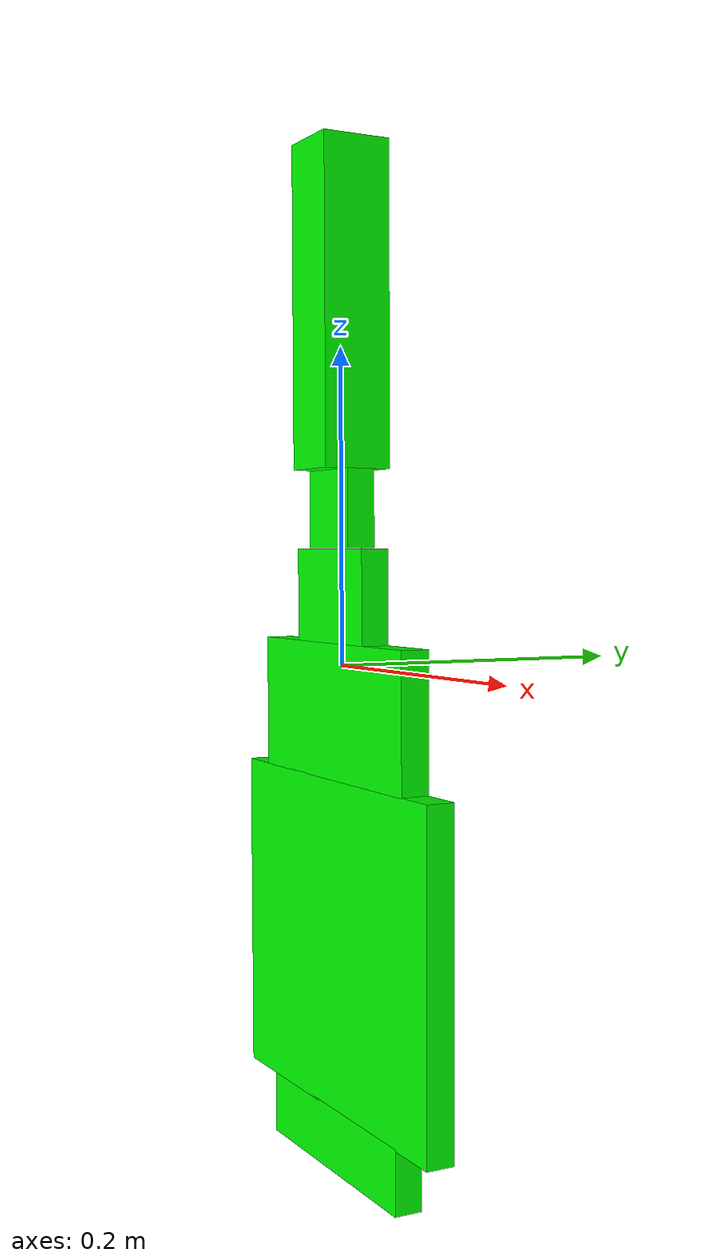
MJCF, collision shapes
<mujoco model="Tennis_Racquet_2">
  <compiler autolimits="true" boundmass="0" angle="radian"/>
  <default>
    <default class="/">
      <default class="__VISUAL_MJT__">
        <geom contype="0" conaffinity="0" group="0"/>
      </default>
      <default class="__STRUCTURAL_MJT__">
        <geom contype="8" conaffinity="15" group="4" friction="0.90000000000000002 0.90000000000000002 0.001" solref="0.025000000000000001 1" solimp="0.998 0.998 0.001"/>
      </default>
      <default class="__DYNAMIC_MJT__">
        <geom contype="1" conaffinity="15" group="4" friction="0.90000000000000002 0.90000000000000002 0.001" solref="0.025000000000000001 1" solimp="0.998 0.998 0.001"/>
      </default>
    </default>
  </default>
  <asset>
    <texture name="MediumWoodSmooth" type="2d" file="WoodGrains1.png"/>
    <material name="material_MediumWoodSmooth" class="/" texture="MediumWoodSmooth" specular="0.5" shininess="0.5" rgba="0.39622639999999998 0.2303684 0.15138840000000001 1"/>
    <texture name="Copper_AlbedoTransparency" type="2d" file="Copper_AlbedoTransparency.png"/>
    <material name="material_Copper_AlbedoTransparency" class="/" texture="Copper_AlbedoTransparency" specular="0.5" shininess="0.5" rgba="1 1 1 1"/>
    <texture name="MaroonPlasticScratched" type="2d" file="MaterialPlane_DefaultMaterial_AlbedoTransparency.png"/>
    <material name="material_MaroonPlasticScratched" class="/" texture="MaroonPlasticScratched" specular="0.5" shininess="0.5" rgba="0.27941179999999999 0.15115439999999999 0.1294334 1"/>
    <mesh name="Tennis_Racquet_2_Cube.1755_0" class="/" file="Tennis_Racquet_2_Cube.1755/Tennis_Racquet_2_Cube.1755_0.obj" scale="11.939166069030762 11.939167022705078 11.939169883728027"/>
    <mesh name="Tennis_Racquet_2_Cube.1755_1" class="/" file="Tennis_Racquet_2_Cube.1755/Tennis_Racquet_2_Cube.1755_1.obj" scale="11.939166069030762 11.939167022705078 11.939169883728027"/>
    <mesh name="Tennis_Racquet_2_Cube.1755_2" class="/" file="Tennis_Racquet_2_Cube.1755/Tennis_Racquet_2_Cube.1755_2.obj" scale="11.939166069030762 11.939167022705078 11.939169883728027"/>
  </asset>
  <worldbody>
    <body name="Tennis_Racquet_2">
      <joint name="Tennis_Racquet_2_free" class="/" type="free" pos="0 0 0" axis="0 0 1" stiffness="0" range="0 0" armature="0" damping="0.10000000000000001" frictionloss="0"/>
      <body name="Tennis_Racquet_2_Cube.1755" pos="0.00042000000000000002 2.9802322387695312e-08 0.27461003981590271" quat="0.70710678118654757 -0.70710678118654746 0 0">
        <geom name="Tennis_Racquet_2_Cube.1755_0" class="__VISUAL_MJT__" type="mesh" material="material_MediumWoodSmooth" mesh="Tennis_Racquet_2_Cube.1755_0"/>
        <geom name="Tennis_Racquet_2_Cube.1755_1" class="__VISUAL_MJT__" type="mesh" material="material_Copper_AlbedoTransparency" mesh="Tennis_Racquet_2_Cube.1755_1"/>
        <geom name="Tennis_Racquet_2_Cube.1755_2" class="__VISUAL_MJT__" type="mesh" material="material_MaroonPlasticScratched" mesh="Tennis_Racquet_2_Cube.1755_2"/>
        <geom name="Tennis_Racquet_2_Cube.1755_PrimitiveCollider_0" class="__DYNAMIC_MJT__" type="box" size="0.10143066197633743 0.02218727208673954 0.023437594994902611" rgba="0 1 0 1" pos="4.9975582783190475e-08 0.049555461853742599 3.2186531218059145e-09" quat="-0.49999698995993308 -0.49999848007596359 -0.50000301002869652 -0.50000151991266595"/>
        <geom name="Tennis_Racquet_2_Cube.1755_PrimitiveCollider_1" class="__DYNAMIC_MJT__" type="box" size="0.10687511414289474 0.0091513236984610558 0.12745292484760284" rgba="0 1 0 1" pos="-0 0.45339998602867126 3.2186509013598652e-09" quat="-0.49999694525627075 -0.49999849497698867 -0.5000030249298566 -0.50000153481378162"/>
        <geom name="Tennis_Racquet_2_Cube.1755_PrimitiveCollider_2" class="__DYNAMIC_MJT__" type="box" size="0.043446280062198639 0.0091513227671384811 0.097044698894023895" rgba="0 1 0 1" pos="-2.5684945725856778e-08 0.30349820852279663 3.21865156749368e-09" quat="-0.49999698995993308 -0.49999848007596359 -0.50000301002869652 -0.50000151991266595"/>
        <geom name="Tennis_Racquet_2_Cube.1755_PrimitiveCollider_3" class="__DYNAMIC_MJT__" type="box" size="0.02449522353708744 0.0091513227671384811 0.027376912534236908" rgba="0 1 0 1" pos="1.8058698003642348e-07 0.17562627792358398 3.2186520115828898e-09" quat="-0.49999700486095816 -0.49999843537239008 -0.50000302492990101 -0.50000153481382603"/>
        <geom name="Tennis_Racquet_2_Cube.1755_PrimitiveCollider_4" class="__DYNAMIC_MJT__" type="box" size="0.020805699750781059 0.0091513227671384811 0.088161014020442963" rgba="0 1 0 1" pos="3.076273458191281e-07 0.58008617162704468 3.2186509013598652e-09" quat="-0.49999698995993308 -0.49999848007596359 -0.50000301002869652 -0.50000151991266595"/>
        <geom name="Tennis_Racquet_2_Cube.1755_PrimitiveCollider_5" class="__DYNAMIC_MJT__" type="box" size="0.029775191098451614 0.0091500068083405495 0.046021893620491028" rgba="0 1 0 1" pos="3.3204139526787912e-07 0.2304263710975647 3.2186517895382849e-09" quat="-0.49999700486095816 -0.49999843537239008 -0.50000302492990101 -0.50000153481382603"/>
      </body>
    </body>
  </worldbody>
</mujoco>
